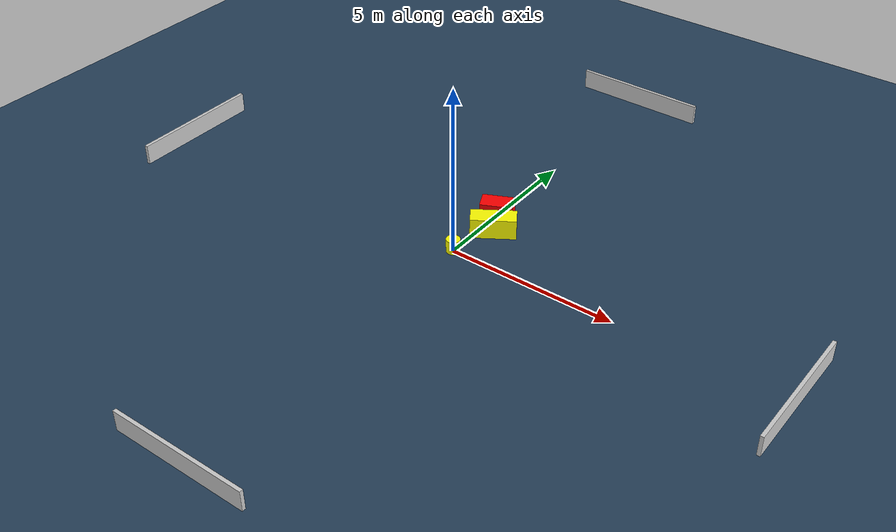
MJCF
<?xml version="1.0" ?>
<mujoco model="generated_environment">
  <option timestep="0.01" integrator="RK4" cone="elliptic"/>
  <default>
    <geom density="1"/>
  </default>
  <asset>
    <texture builtin="gradient" height="3072" name="skybox" rgb1="0.3 0.5 0.7" rgb2="0 0 0" type="skybox" width="512"/>
    <texture builtin="checker" height="300" name="groundplane" rgb1="0.2 0.3 0.4" rgb2="0.1 0.2 0.3" type="2d" width="300"/>
    <material name="groundplane" reflectance="0.2" texrepeat="5 5" texture="groundplane"/>
  </asset>
  <worldbody>
    <light dir="0 0 -1" directional="true" pos="0 0 1.5"/>
    <geom condim="3" friction="0.5 0.005 0.001" material="groundplane" name="floor" pos="0 0 0" size="0 0 0.05" type="plane"/>
    <body name="walls">
      <geom name="wall_1" condim="4" pos="-10.0 0.0 0.3" rgba="0.800000011920929 0.800000011920929 0.800000011920929 1.0" size="0.05 2.0 0.3" type="box"/>
      <geom name="wall_2" condim="4" pos="10.0 0.0 0.3" rgba="0.800000011920929 0.800000011920929 0.800000011920929 1.0" size="0.05 2.0 0.3" type="box"/>
      <geom name="wall_3" condim="4" pos="0.0 -10.0 0.3" rgba="0.800000011920929 0.800000011920929 0.800000011920929 1.0" size="2.0 0.05 0.3" type="box"/>
      <geom name="wall_4" condim="4" pos="0.0 10.0 0.3" rgba="0.800000011920929 0.800000011920929 0.800000011920929 1.0" size="2.0 0.05 0.3" type="box"/>
    </body>
    <body name="robot">
      <joint name="joint_x" type="slide" pos="0 0 0" axis="1 0 0"/>
      <joint name="joint_y" type="slide" pos="0 0 0" axis="0 1 0"/>
      <geom name="robot" type="cylinder" pos="0.0 0.0 0.2" size="0.2 0.2 0.0" mass="5.0" friction="1.0 0.005 0.0001" condim="4" rgba="1.0 1.0 0.0 1.0"/>
    </body>
    <body name="obstacle_1_movable">
      <geom name="obstacle_1_movable" condim="4" pos="0.3911620760520784 1.3284605844074566 0.3" euler="0 0 123.17634689450225" friction="0.0 0.005 0.001" rgba="1.0 1.0 0.0 1.0" size="0.26701905031415835 0.6472168779751553 0.3" type="box" mass="0.1"/>
      <joint type="free"/>
    </body>
    <body name="obstacle_2_static">
      <geom name="obstacle_2_static" condim="4" pos="0.07568627727067287 1.961895394460652 0.3" euler="0 0 295.48672205910435" friction="0.0 0.005 0.001" rgba="1.0 0.0 0.0 1.0" size="0.2693198626967195 0.4680176363818015 0.3" type="box"/>
    </body>
  </worldbody>
  <actuator>
    <motor name="actuator_x" joint="joint_x" gear="1" ctrlrange="-1 1"/>
    <motor name="actuator_y" joint="joint_y" gear="1" ctrlrange="-1 1"/>
  </actuator>
</mujoco>
